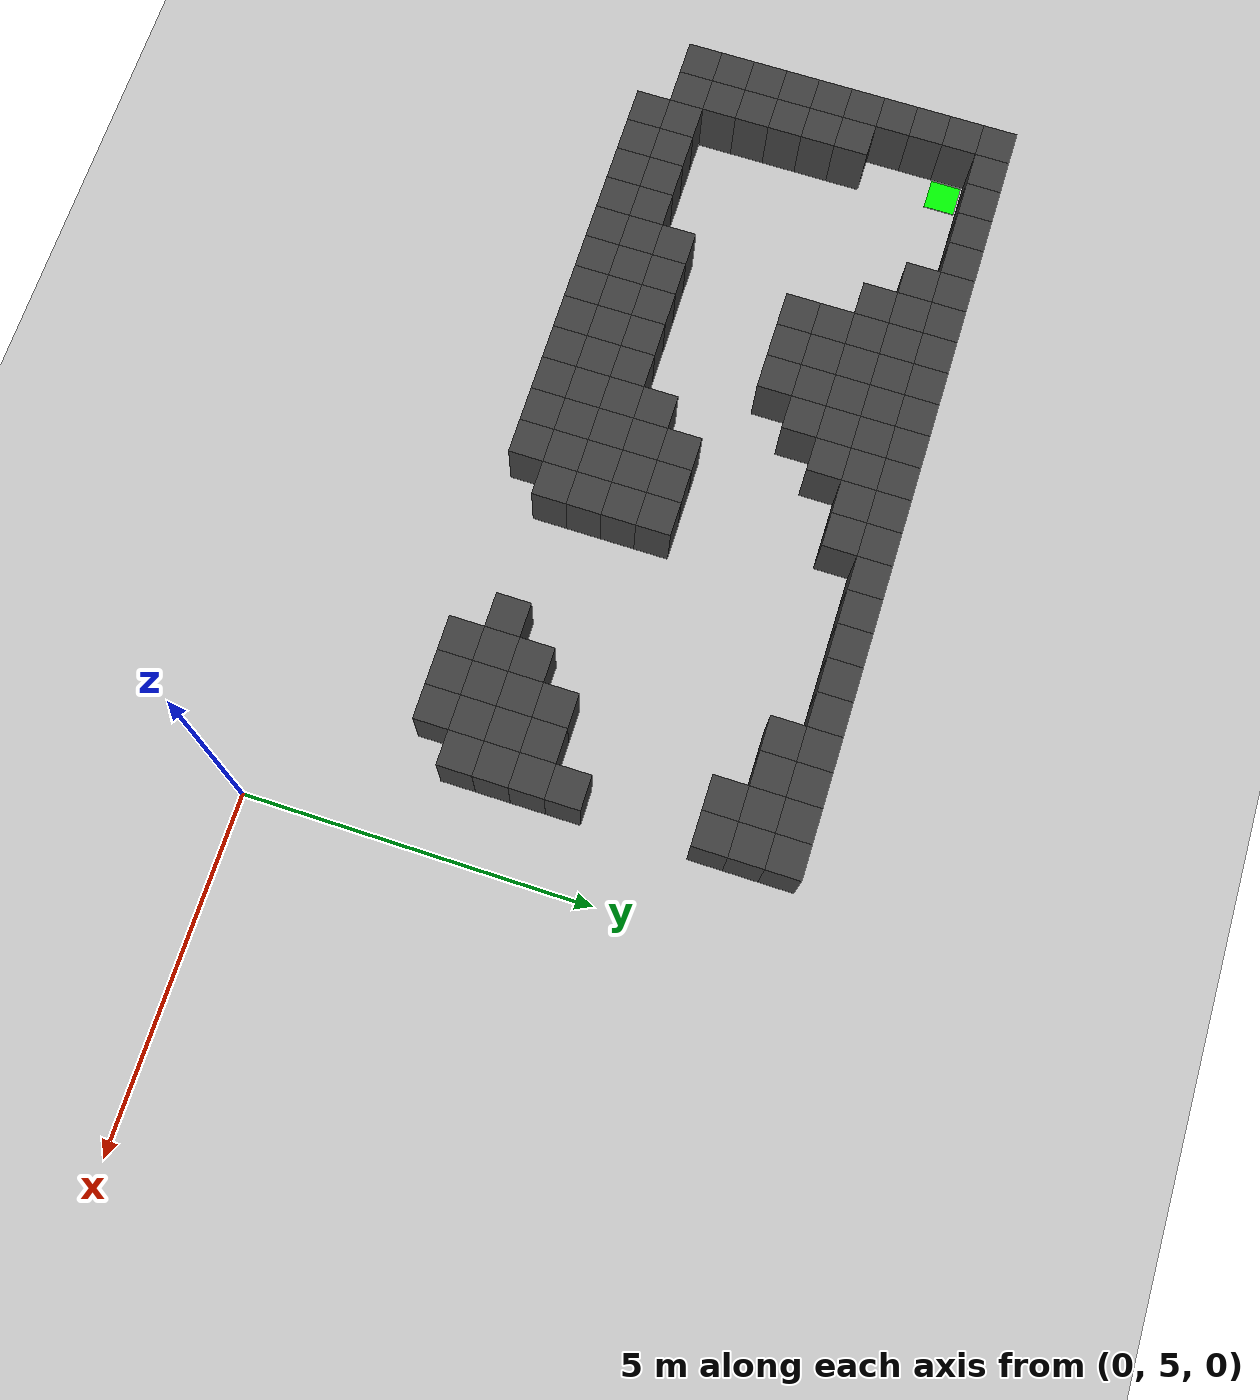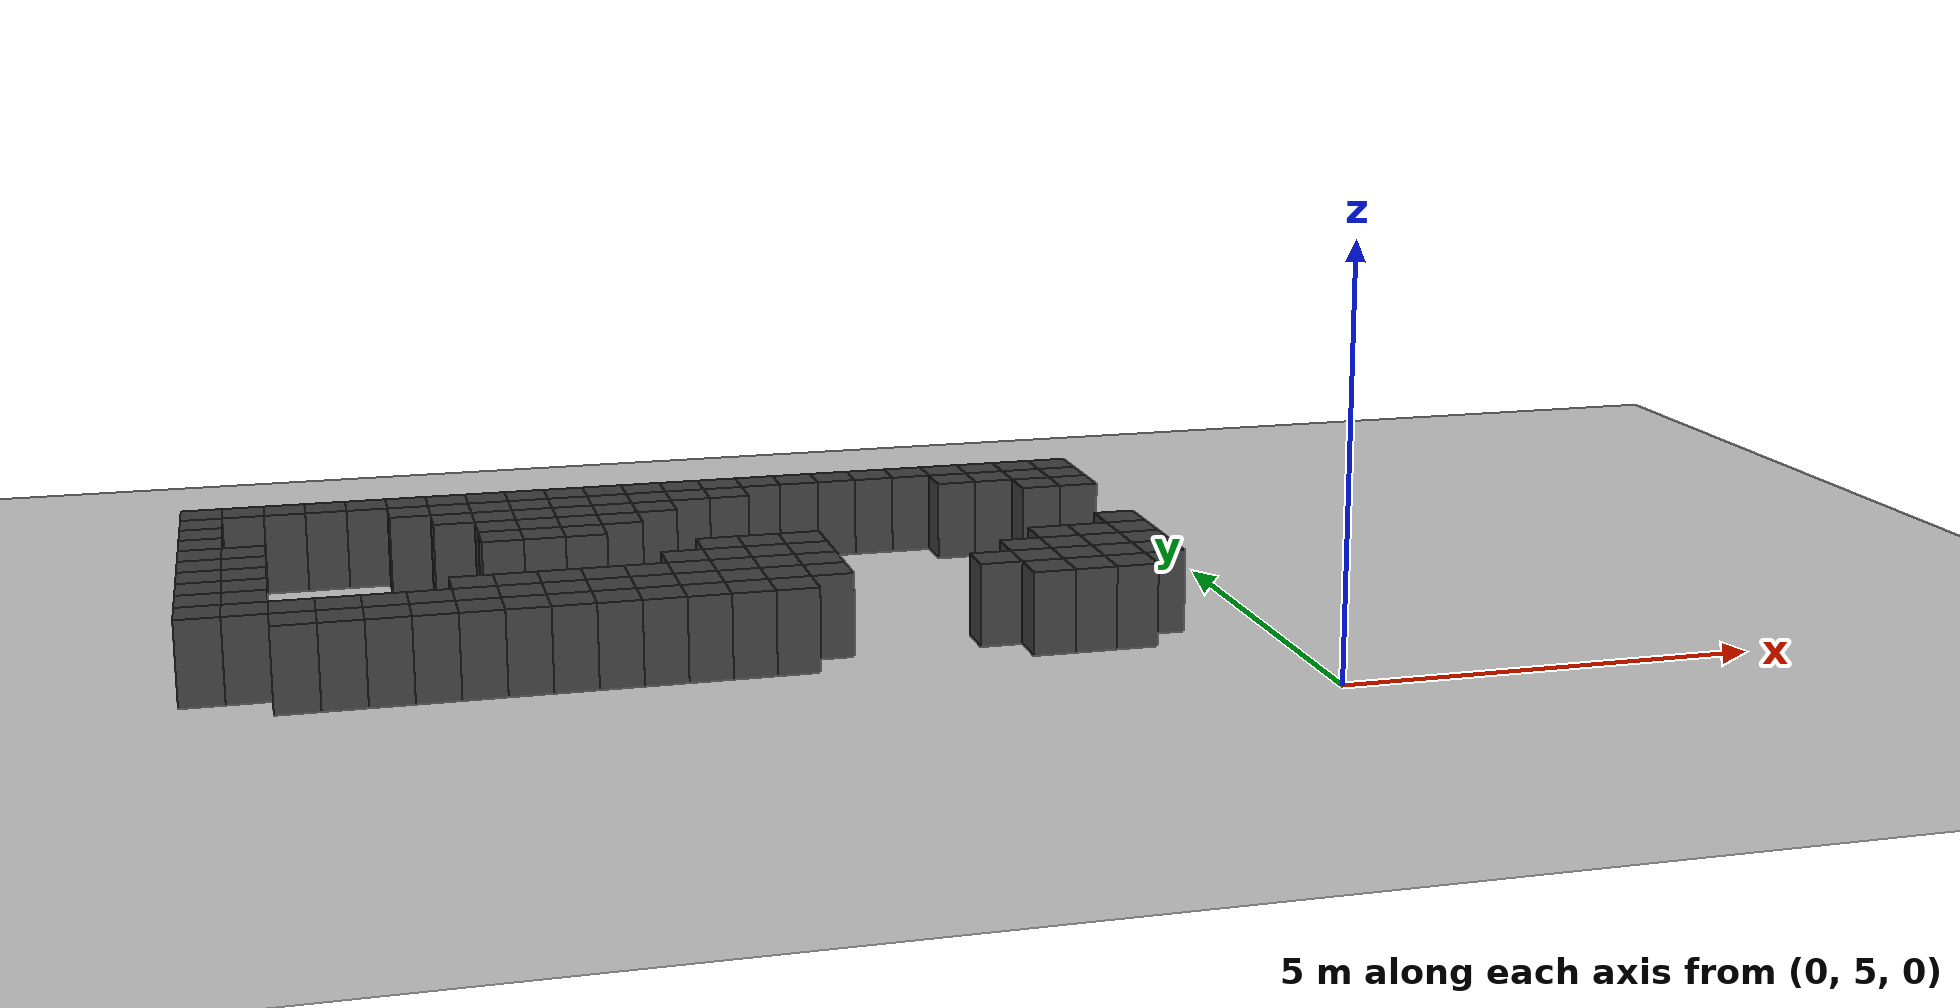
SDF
<sdf version="1.7">
 <world name="map_7972">
  <model name="ground_plane">
   <static>true</static>
   <link name="link">
    <collision name="collision">
     <geometry><plane><normal>0 0 1</normal><size>200 200</size></plane></geometry>
    </collision>
    <visual name="visual">
     <geometry><plane><normal>0 0 1</normal><size>200 200</size></plane></geometry>
     <material><ambient>0.8 0.8 0.8 1</ambient><diffuse>0.8 0.8 0.8 1</diffuse></material>
    </visual>
   </link>
  </model>
  <model name="maze_environment">
   <static>true</static>
   <link name="wall_0">
    <pose>-12.250 12.250 0.500 0 0 0</pose>
    <collision name="col"><geometry><box><size>0.5 0.5 1.0</size></box></geometry></collision>
    <visual name="vis">
     <geometry><box><size>0.5 0.5 1.0</size></box></geometry>
     <material><ambient>0.15 0.15 0.15 1</ambient><diffuse>0.25 0.25 0.25 1</diffuse></material>
    </visual>
   </link>
   <link name="wall_1">
    <pose>-11.750 12.250 0.500 0 0 0</pose>
    <collision name="col"><geometry><box><size>0.5 0.5 1.0</size></box></geometry></collision>
    <visual name="vis">
     <geometry><box><size>0.5 0.5 1.0</size></box></geometry>
     <material><ambient>0.15 0.15 0.15 1</ambient><diffuse>0.25 0.25 0.25 1</diffuse></material>
    </visual>
   </link>
   <link name="wall_2">
    <pose>-11.250 12.250 0.500 0 0 0</pose>
    <collision name="col"><geometry><box><size>0.5 0.5 1.0</size></box></geometry></collision>
    <visual name="vis">
     <geometry><box><size>0.5 0.5 1.0</size></box></geometry>
     <material><ambient>0.15 0.15 0.15 1</ambient><diffuse>0.25 0.25 0.25 1</diffuse></material>
    </visual>
   </link>
   <link name="wall_3">
    <pose>-10.750 12.250 0.500 0 0 0</pose>
    <collision name="col"><geometry><box><size>0.5 0.5 1.0</size></box></geometry></collision>
    <visual name="vis">
     <geometry><box><size>0.5 0.5 1.0</size></box></geometry>
     <material><ambient>0.15 0.15 0.15 1</ambient><diffuse>0.25 0.25 0.25 1</diffuse></material>
    </visual>
   </link>
   <link name="wall_4">
    <pose>-10.250 12.250 0.500 0 0 0</pose>
    <collision name="col"><geometry><box><size>0.5 0.5 1.0</size></box></geometry></collision>
    <visual name="vis">
     <geometry><box><size>0.5 0.5 1.0</size></box></geometry>
     <material><ambient>0.15 0.15 0.15 1</ambient><diffuse>0.25 0.25 0.25 1</diffuse></material>
    </visual>
   </link>
   <link name="wall_5">
    <pose>-9.750 12.250 0.500 0 0 0</pose>
    <collision name="col"><geometry><box><size>0.5 0.5 1.0</size></box></geometry></collision>
    <visual name="vis">
     <geometry><box><size>0.5 0.5 1.0</size></box></geometry>
     <material><ambient>0.15 0.15 0.15 1</ambient><diffuse>0.25 0.25 0.25 1</diffuse></material>
    </visual>
   </link>
   <link name="wall_6">
    <pose>-9.250 12.250 0.500 0 0 0</pose>
    <collision name="col"><geometry><box><size>0.5 0.5 1.0</size></box></geometry></collision>
    <visual name="vis">
     <geometry><box><size>0.5 0.5 1.0</size></box></geometry>
     <material><ambient>0.15 0.15 0.15 1</ambient><diffuse>0.25 0.25 0.25 1</diffuse></material>
    </visual>
   </link>
   <link name="wall_7">
    <pose>-8.750 12.250 0.500 0 0 0</pose>
    <collision name="col"><geometry><box><size>0.5 0.5 1.0</size></box></geometry></collision>
    <visual name="vis">
     <geometry><box><size>0.5 0.5 1.0</size></box></geometry>
     <material><ambient>0.15 0.15 0.15 1</ambient><diffuse>0.25 0.25 0.25 1</diffuse></material>
    </visual>
   </link>
   <link name="wall_8">
    <pose>-8.250 12.250 0.500 0 0 0</pose>
    <collision name="col"><geometry><box><size>0.5 0.5 1.0</size></box></geometry></collision>
    <visual name="vis">
     <geometry><box><size>0.5 0.5 1.0</size></box></geometry>
     <material><ambient>0.15 0.15 0.15 1</ambient><diffuse>0.25 0.25 0.25 1</diffuse></material>
    </visual>
   </link>
   <link name="wall_9">
    <pose>-7.750 12.250 0.500 0 0 0</pose>
    <collision name="col"><geometry><box><size>0.5 0.5 1.0</size></box></geometry></collision>
    <visual name="vis">
     <geometry><box><size>0.5 0.5 1.0</size></box></geometry>
     <material><ambient>0.15 0.15 0.15 1</ambient><diffuse>0.25 0.25 0.25 1</diffuse></material>
    </visual>
   </link>
   <link name="wall_10">
    <pose>-7.250 12.250 0.500 0 0 0</pose>
    <collision name="col"><geometry><box><size>0.5 0.5 1.0</size></box></geometry></collision>
    <visual name="vis">
     <geometry><box><size>0.5 0.5 1.0</size></box></geometry>
     <material><ambient>0.15 0.15 0.15 1</ambient><diffuse>0.25 0.25 0.25 1</diffuse></material>
    </visual>
   </link>
   <link name="wall_11">
    <pose>-6.750 12.250 0.500 0 0 0</pose>
    <collision name="col"><geometry><box><size>0.5 0.5 1.0</size></box></geometry></collision>
    <visual name="vis">
     <geometry><box><size>0.5 0.5 1.0</size></box></geometry>
     <material><ambient>0.15 0.15 0.15 1</ambient><diffuse>0.25 0.25 0.25 1</diffuse></material>
    </visual>
   </link>
   <link name="wall_12">
    <pose>-6.250 12.250 0.500 0 0 0</pose>
    <collision name="col"><geometry><box><size>0.5 0.5 1.0</size></box></geometry></collision>
    <visual name="vis">
     <geometry><box><size>0.5 0.5 1.0</size></box></geometry>
     <material><ambient>0.15 0.15 0.15 1</ambient><diffuse>0.25 0.25 0.25 1</diffuse></material>
    </visual>
   </link>
   <link name="wall_13">
    <pose>-5.750 12.250 0.500 0 0 0</pose>
    <collision name="col"><geometry><box><size>0.5 0.5 1.0</size></box></geometry></collision>
    <visual name="vis">
     <geometry><box><size>0.5 0.5 1.0</size></box></geometry>
     <material><ambient>0.15 0.15 0.15 1</ambient><diffuse>0.25 0.25 0.25 1</diffuse></material>
    </visual>
   </link>
   <link name="wall_14">
    <pose>-5.250 12.250 0.500 0 0 0</pose>
    <collision name="col"><geometry><box><size>0.5 0.5 1.0</size></box></geometry></collision>
    <visual name="vis">
     <geometry><box><size>0.5 0.5 1.0</size></box></geometry>
     <material><ambient>0.15 0.15 0.15 1</ambient><diffuse>0.25 0.25 0.25 1</diffuse></material>
    </visual>
   </link>
   <link name="wall_15">
    <pose>-4.750 12.250 0.500 0 0 0</pose>
    <collision name="col"><geometry><box><size>0.5 0.5 1.0</size></box></geometry></collision>
    <visual name="vis">
     <geometry><box><size>0.5 0.5 1.0</size></box></geometry>
     <material><ambient>0.15 0.15 0.15 1</ambient><diffuse>0.25 0.25 0.25 1</diffuse></material>
    </visual>
   </link>
   <link name="wall_16">
    <pose>-4.250 12.250 0.500 0 0 0</pose>
    <collision name="col"><geometry><box><size>0.5 0.5 1.0</size></box></geometry></collision>
    <visual name="vis">
     <geometry><box><size>0.5 0.5 1.0</size></box></geometry>
     <material><ambient>0.15 0.15 0.15 1</ambient><diffuse>0.25 0.25 0.25 1</diffuse></material>
    </visual>
   </link>
   <link name="wall_17">
    <pose>-3.750 12.250 0.500 0 0 0</pose>
    <collision name="col"><geometry><box><size>0.5 0.5 1.0</size></box></geometry></collision>
    <visual name="vis">
     <geometry><box><size>0.5 0.5 1.0</size></box></geometry>
     <material><ambient>0.15 0.15 0.15 1</ambient><diffuse>0.25 0.25 0.25 1</diffuse></material>
    </visual>
   </link>
   <link name="wall_18">
    <pose>-3.250 12.250 0.500 0 0 0</pose>
    <collision name="col"><geometry><box><size>0.5 0.5 1.0</size></box></geometry></collision>
    <visual name="vis">
     <geometry><box><size>0.5 0.5 1.0</size></box></geometry>
     <material><ambient>0.15 0.15 0.15 1</ambient><diffuse>0.25 0.25 0.25 1</diffuse></material>
    </visual>
   </link>
   <link name="wall_19">
    <pose>-2.750 12.250 0.500 0 0 0</pose>
    <collision name="col"><geometry><box><size>0.5 0.5 1.0</size></box></geometry></collision>
    <visual name="vis">
     <geometry><box><size>0.5 0.5 1.0</size></box></geometry>
     <material><ambient>0.15 0.15 0.15 1</ambient><diffuse>0.25 0.25 0.25 1</diffuse></material>
    </visual>
   </link>
   <link name="wall_20">
    <pose>-2.250 12.250 0.500 0 0 0</pose>
    <collision name="col"><geometry><box><size>0.5 0.5 1.0</size></box></geometry></collision>
    <visual name="vis">
     <geometry><box><size>0.5 0.5 1.0</size></box></geometry>
     <material><ambient>0.15 0.15 0.15 1</ambient><diffuse>0.25 0.25 0.25 1</diffuse></material>
    </visual>
   </link>
   <link name="wall_21">
    <pose>-1.750 12.250 0.500 0 0 0</pose>
    <collision name="col"><geometry><box><size>0.5 0.5 1.0</size></box></geometry></collision>
    <visual name="vis">
     <geometry><box><size>0.5 0.5 1.0</size></box></geometry>
     <material><ambient>0.15 0.15 0.15 1</ambient><diffuse>0.25 0.25 0.25 1</diffuse></material>
    </visual>
   </link>
   <link name="wall_22">
    <pose>-1.250 12.250 0.500 0 0 0</pose>
    <collision name="col"><geometry><box><size>0.5 0.5 1.0</size></box></geometry></collision>
    <visual name="vis">
     <geometry><box><size>0.5 0.5 1.0</size></box></geometry>
     <material><ambient>0.15 0.15 0.15 1</ambient><diffuse>0.25 0.25 0.25 1</diffuse></material>
    </visual>
   </link>
   <link name="wall_50">
    <pose>-12.250 11.750 0.500 0 0 0</pose>
    <collision name="col"><geometry><box><size>0.5 0.5 1.0</size></box></geometry></collision>
    <visual name="vis">
     <geometry><box><size>0.5 0.5 1.0</size></box></geometry>
     <material><ambient>0.15 0.15 0.15 1</ambient><diffuse>0.25 0.25 0.25 1</diffuse></material>
    </visual>
   </link>
   <link name="wall_51">
    <pose>-9.750 11.750 0.500 0 0 0</pose>
    <collision name="col"><geometry><box><size>0.5 0.5 1.0</size></box></geometry></collision>
    <visual name="vis">
     <geometry><box><size>0.5 0.5 1.0</size></box></geometry>
     <material><ambient>0.15 0.15 0.15 1</ambient><diffuse>0.25 0.25 0.25 1</diffuse></material>
    </visual>
   </link>
   <link name="wall_52">
    <pose>-9.250 11.750 0.500 0 0 0</pose>
    <collision name="col"><geometry><box><size>0.5 0.5 1.0</size></box></geometry></collision>
    <visual name="vis">
     <geometry><box><size>0.5 0.5 1.0</size></box></geometry>
     <material><ambient>0.15 0.15 0.15 1</ambient><diffuse>0.25 0.25 0.25 1</diffuse></material>
    </visual>
   </link>
   <link name="wall_53">
    <pose>-8.750 11.750 0.500 0 0 0</pose>
    <collision name="col"><geometry><box><size>0.5 0.5 1.0</size></box></geometry></collision>
    <visual name="vis">
     <geometry><box><size>0.5 0.5 1.0</size></box></geometry>
     <material><ambient>0.15 0.15 0.15 1</ambient><diffuse>0.25 0.25 0.25 1</diffuse></material>
    </visual>
   </link>
   <link name="wall_54">
    <pose>-8.250 11.750 0.500 0 0 0</pose>
    <collision name="col"><geometry><box><size>0.5 0.5 1.0</size></box></geometry></collision>
    <visual name="vis">
     <geometry><box><size>0.5 0.5 1.0</size></box></geometry>
     <material><ambient>0.15 0.15 0.15 1</ambient><diffuse>0.25 0.25 0.25 1</diffuse></material>
    </visual>
   </link>
   <link name="wall_55">
    <pose>-7.750 11.750 0.500 0 0 0</pose>
    <collision name="col"><geometry><box><size>0.5 0.5 1.0</size></box></geometry></collision>
    <visual name="vis">
     <geometry><box><size>0.5 0.5 1.0</size></box></geometry>
     <material><ambient>0.15 0.15 0.15 1</ambient><diffuse>0.25 0.25 0.25 1</diffuse></material>
    </visual>
   </link>
   <link name="wall_56">
    <pose>-7.250 11.750 0.500 0 0 0</pose>
    <collision name="col"><geometry><box><size>0.5 0.5 1.0</size></box></geometry></collision>
    <visual name="vis">
     <geometry><box><size>0.5 0.5 1.0</size></box></geometry>
     <material><ambient>0.15 0.15 0.15 1</ambient><diffuse>0.25 0.25 0.25 1</diffuse></material>
    </visual>
   </link>
   <link name="wall_57">
    <pose>-6.750 11.750 0.500 0 0 0</pose>
    <collision name="col"><geometry><box><size>0.5 0.5 1.0</size></box></geometry></collision>
    <visual name="vis">
     <geometry><box><size>0.5 0.5 1.0</size></box></geometry>
     <material><ambient>0.15 0.15 0.15 1</ambient><diffuse>0.25 0.25 0.25 1</diffuse></material>
    </visual>
   </link>
   <link name="wall_58">
    <pose>-6.250 11.750 0.500 0 0 0</pose>
    <collision name="col"><geometry><box><size>0.5 0.5 1.0</size></box></geometry></collision>
    <visual name="vis">
     <geometry><box><size>0.5 0.5 1.0</size></box></geometry>
     <material><ambient>0.15 0.15 0.15 1</ambient><diffuse>0.25 0.25 0.25 1</diffuse></material>
    </visual>
   </link>
   <link name="wall_59">
    <pose>-5.750 11.750 0.500 0 0 0</pose>
    <collision name="col"><geometry><box><size>0.5 0.5 1.0</size></box></geometry></collision>
    <visual name="vis">
     <geometry><box><size>0.5 0.5 1.0</size></box></geometry>
     <material><ambient>0.15 0.15 0.15 1</ambient><diffuse>0.25 0.25 0.25 1</diffuse></material>
    </visual>
   </link>
   <link name="wall_60">
    <pose>-2.750 11.750 0.500 0 0 0</pose>
    <collision name="col"><geometry><box><size>0.5 0.5 1.0</size></box></geometry></collision>
    <visual name="vis">
     <geometry><box><size>0.5 0.5 1.0</size></box></geometry>
     <material><ambient>0.15 0.15 0.15 1</ambient><diffuse>0.25 0.25 0.25 1</diffuse></material>
    </visual>
   </link>
   <link name="wall_61">
    <pose>-2.250 11.750 0.500 0 0 0</pose>
    <collision name="col"><geometry><box><size>0.5 0.5 1.0</size></box></geometry></collision>
    <visual name="vis">
     <geometry><box><size>0.5 0.5 1.0</size></box></geometry>
     <material><ambient>0.15 0.15 0.15 1</ambient><diffuse>0.25 0.25 0.25 1</diffuse></material>
    </visual>
   </link>
   <link name="wall_62">
    <pose>-1.750 11.750 0.500 0 0 0</pose>
    <collision name="col"><geometry><box><size>0.5 0.5 1.0</size></box></geometry></collision>
    <visual name="vis">
     <geometry><box><size>0.5 0.5 1.0</size></box></geometry>
     <material><ambient>0.15 0.15 0.15 1</ambient><diffuse>0.25 0.25 0.25 1</diffuse></material>
    </visual>
   </link>
   <link name="wall_63">
    <pose>-1.250 11.750 0.500 0 0 0</pose>
    <collision name="col"><geometry><box><size>0.5 0.5 1.0</size></box></geometry></collision>
    <visual name="vis">
     <geometry><box><size>0.5 0.5 1.0</size></box></geometry>
     <material><ambient>0.15 0.15 0.15 1</ambient><diffuse>0.25 0.25 0.25 1</diffuse></material>
    </visual>
   </link>
   <link name="wall_86">
    <pose>-12.250 11.250 0.500 0 0 0</pose>
    <collision name="col"><geometry><box><size>0.5 0.5 1.0</size></box></geometry></collision>
    <visual name="vis">
     <geometry><box><size>0.5 0.5 1.0</size></box></geometry>
     <material><ambient>0.15 0.15 0.15 1</ambient><diffuse>0.25 0.25 0.25 1</diffuse></material>
    </visual>
   </link>
   <link name="wall_87">
    <pose>-9.250 11.250 0.500 0 0 0</pose>
    <collision name="col"><geometry><box><size>0.5 0.5 1.0</size></box></geometry></collision>
    <visual name="vis">
     <geometry><box><size>0.5 0.5 1.0</size></box></geometry>
     <material><ambient>0.15 0.15 0.15 1</ambient><diffuse>0.25 0.25 0.25 1</diffuse></material>
    </visual>
   </link>
   <link name="wall_88">
    <pose>-8.750 11.250 0.500 0 0 0</pose>
    <collision name="col"><geometry><box><size>0.5 0.5 1.0</size></box></geometry></collision>
    <visual name="vis">
     <geometry><box><size>0.5 0.5 1.0</size></box></geometry>
     <material><ambient>0.15 0.15 0.15 1</ambient><diffuse>0.25 0.25 0.25 1</diffuse></material>
    </visual>
   </link>
   <link name="wall_89">
    <pose>-8.250 11.250 0.500 0 0 0</pose>
    <collision name="col"><geometry><box><size>0.5 0.5 1.0</size></box></geometry></collision>
    <visual name="vis">
     <geometry><box><size>0.5 0.5 1.0</size></box></geometry>
     <material><ambient>0.15 0.15 0.15 1</ambient><diffuse>0.25 0.25 0.25 1</diffuse></material>
    </visual>
   </link>
   <link name="wall_90">
    <pose>-7.750 11.250 0.500 0 0 0</pose>
    <collision name="col"><geometry><box><size>0.5 0.5 1.0</size></box></geometry></collision>
    <visual name="vis">
     <geometry><box><size>0.5 0.5 1.0</size></box></geometry>
     <material><ambient>0.15 0.15 0.15 1</ambient><diffuse>0.25 0.25 0.25 1</diffuse></material>
    </visual>
   </link>
   <link name="wall_91">
    <pose>-7.250 11.250 0.500 0 0 0</pose>
    <collision name="col"><geometry><box><size>0.5 0.5 1.0</size></box></geometry></collision>
    <visual name="vis">
     <geometry><box><size>0.5 0.5 1.0</size></box></geometry>
     <material><ambient>0.15 0.15 0.15 1</ambient><diffuse>0.25 0.25 0.25 1</diffuse></material>
    </visual>
   </link>
   <link name="wall_92">
    <pose>-6.750 11.250 0.500 0 0 0</pose>
    <collision name="col"><geometry><box><size>0.5 0.5 1.0</size></box></geometry></collision>
    <visual name="vis">
     <geometry><box><size>0.5 0.5 1.0</size></box></geometry>
     <material><ambient>0.15 0.15 0.15 1</ambient><diffuse>0.25 0.25 0.25 1</diffuse></material>
    </visual>
   </link>
   <link name="wall_93">
    <pose>-1.750 11.250 0.500 0 0 0</pose>
    <collision name="col"><geometry><box><size>0.5 0.5 1.0</size></box></geometry></collision>
    <visual name="vis">
     <geometry><box><size>0.5 0.5 1.0</size></box></geometry>
     <material><ambient>0.15 0.15 0.15 1</ambient><diffuse>0.25 0.25 0.25 1</diffuse></material>
    </visual>
   </link>
   <link name="wall_94">
    <pose>-1.250 11.250 0.500 0 0 0</pose>
    <collision name="col"><geometry><box><size>0.5 0.5 1.0</size></box></geometry></collision>
    <visual name="vis">
     <geometry><box><size>0.5 0.5 1.0</size></box></geometry>
     <material><ambient>0.15 0.15 0.15 1</ambient><diffuse>0.25 0.25 0.25 1</diffuse></material>
    </visual>
   </link>
   <link name="wall_113">
    <pose>-12.250 10.750 0.500 0 0 0</pose>
    <collision name="col"><geometry><box><size>0.5 0.5 1.0</size></box></geometry></collision>
    <visual name="vis">
     <geometry><box><size>0.5 0.5 1.0</size></box></geometry>
     <material><ambient>0.15 0.15 0.15 1</ambient><diffuse>0.25 0.25 0.25 1</diffuse></material>
    </visual>
   </link>
   <link name="wall_114">
    <pose>-8.750 10.750 0.500 0 0 0</pose>
    <collision name="col"><geometry><box><size>0.5 0.5 1.0</size></box></geometry></collision>
    <visual name="vis">
     <geometry><box><size>0.5 0.5 1.0</size></box></geometry>
     <material><ambient>0.15 0.15 0.15 1</ambient><diffuse>0.25 0.25 0.25 1</diffuse></material>
    </visual>
   </link>
   <link name="wall_115">
    <pose>-8.250 10.750 0.500 0 0 0</pose>
    <collision name="col"><geometry><box><size>0.5 0.5 1.0</size></box></geometry></collision>
    <visual name="vis">
     <geometry><box><size>0.5 0.5 1.0</size></box></geometry>
     <material><ambient>0.15 0.15 0.15 1</ambient><diffuse>0.25 0.25 0.25 1</diffuse></material>
    </visual>
   </link>
   <link name="wall_116">
    <pose>-7.750 10.750 0.500 0 0 0</pose>
    <collision name="col"><geometry><box><size>0.5 0.5 1.0</size></box></geometry></collision>
    <visual name="vis">
     <geometry><box><size>0.5 0.5 1.0</size></box></geometry>
     <material><ambient>0.15 0.15 0.15 1</ambient><diffuse>0.25 0.25 0.25 1</diffuse></material>
    </visual>
   </link>
   <link name="wall_117">
    <pose>-7.250 10.750 0.500 0 0 0</pose>
    <collision name="col"><geometry><box><size>0.5 0.5 1.0</size></box></geometry></collision>
    <visual name="vis">
     <geometry><box><size>0.5 0.5 1.0</size></box></geometry>
     <material><ambient>0.15 0.15 0.15 1</ambient><diffuse>0.25 0.25 0.25 1</diffuse></material>
    </visual>
   </link>
   <link name="wall_130">
    <pose>-12.250 10.250 0.500 0 0 0</pose>
    <collision name="col"><geometry><box><size>0.5 0.5 1.0</size></box></geometry></collision>
    <visual name="vis">
     <geometry><box><size>0.5 0.5 1.0</size></box></geometry>
     <material><ambient>0.15 0.15 0.15 1</ambient><diffuse>0.25 0.25 0.25 1</diffuse></material>
    </visual>
   </link>
   <link name="wall_131">
    <pose>-11.750 10.250 0.500 0 0 0</pose>
    <collision name="col"><geometry><box><size>0.5 0.5 1.0</size></box></geometry></collision>
    <visual name="vis">
     <geometry><box><size>0.5 0.5 1.0</size></box></geometry>
     <material><ambient>0.15 0.15 0.15 1</ambient><diffuse>0.25 0.25 0.25 1</diffuse></material>
    </visual>
   </link>
   <link name="wall_132">
    <pose>-8.750 10.250 0.500 0 0 0</pose>
    <collision name="col"><geometry><box><size>0.5 0.5 1.0</size></box></geometry></collision>
    <visual name="vis">
     <geometry><box><size>0.5 0.5 1.0</size></box></geometry>
     <material><ambient>0.15 0.15 0.15 1</ambient><diffuse>0.25 0.25 0.25 1</diffuse></material>
    </visual>
   </link>
   <link name="wall_133">
    <pose>-8.250 10.250 0.500 0 0 0</pose>
    <collision name="col"><geometry><box><size>0.5 0.5 1.0</size></box></geometry></collision>
    <visual name="vis">
     <geometry><box><size>0.5 0.5 1.0</size></box></geometry>
     <material><ambient>0.15 0.15 0.15 1</ambient><diffuse>0.25 0.25 0.25 1</diffuse></material>
    </visual>
   </link>
   <link name="wall_134">
    <pose>-7.750 10.250 0.500 0 0 0</pose>
    <collision name="col"><geometry><box><size>0.5 0.5 1.0</size></box></geometry></collision>
    <visual name="vis">
     <geometry><box><size>0.5 0.5 1.0</size></box></geometry>
     <material><ambient>0.15 0.15 0.15 1</ambient><diffuse>0.25 0.25 0.25 1</diffuse></material>
    </visual>
   </link>
   <link name="wall_143">
    <pose>-12.250 9.750 0.500 0 0 0</pose>
    <collision name="col"><geometry><box><size>0.5 0.5 1.0</size></box></geometry></collision>
    <visual name="vis">
     <geometry><box><size>0.5 0.5 1.0</size></box></geometry>
     <material><ambient>0.15 0.15 0.15 1</ambient><diffuse>0.25 0.25 0.25 1</diffuse></material>
    </visual>
   </link>
   <link name="wall_144">
    <pose>-11.750 9.750 0.500 0 0 0</pose>
    <collision name="col"><geometry><box><size>0.5 0.5 1.0</size></box></geometry></collision>
    <visual name="vis">
     <geometry><box><size>0.5 0.5 1.0</size></box></geometry>
     <material><ambient>0.15 0.15 0.15 1</ambient><diffuse>0.25 0.25 0.25 1</diffuse></material>
    </visual>
   </link>
   <link name="wall_152">
    <pose>-12.250 9.250 0.500 0 0 0</pose>
    <collision name="col"><geometry><box><size>0.5 0.5 1.0</size></box></geometry></collision>
    <visual name="vis">
     <geometry><box><size>0.5 0.5 1.0</size></box></geometry>
     <material><ambient>0.15 0.15 0.15 1</ambient><diffuse>0.25 0.25 0.25 1</diffuse></material>
    </visual>
   </link>
   <link name="wall_153">
    <pose>-11.750 9.250 0.500 0 0 0</pose>
    <collision name="col"><geometry><box><size>0.5 0.5 1.0</size></box></geometry></collision>
    <visual name="vis">
     <geometry><box><size>0.5 0.5 1.0</size></box></geometry>
     <material><ambient>0.15 0.15 0.15 1</ambient><diffuse>0.25 0.25 0.25 1</diffuse></material>
    </visual>
   </link>
   <link name="wall_154">
    <pose>-6.250 9.250 0.500 0 0 0</pose>
    <collision name="col"><geometry><box><size>0.5 0.5 1.0</size></box></geometry></collision>
    <visual name="vis">
     <geometry><box><size>0.5 0.5 1.0</size></box></geometry>
     <material><ambient>0.15 0.15 0.15 1</ambient><diffuse>0.25 0.25 0.25 1</diffuse></material>
    </visual>
   </link>
   <link name="wall_155">
    <pose>-5.750 9.250 0.500 0 0 0</pose>
    <collision name="col"><geometry><box><size>0.5 0.5 1.0</size></box></geometry></collision>
    <visual name="vis">
     <geometry><box><size>0.5 0.5 1.0</size></box></geometry>
     <material><ambient>0.15 0.15 0.15 1</ambient><diffuse>0.25 0.25 0.25 1</diffuse></material>
    </visual>
   </link>
   <link name="wall_156">
    <pose>-5.250 9.250 0.500 0 0 0</pose>
    <collision name="col"><geometry><box><size>0.5 0.5 1.0</size></box></geometry></collision>
    <visual name="vis">
     <geometry><box><size>0.5 0.5 1.0</size></box></geometry>
     <material><ambient>0.15 0.15 0.15 1</ambient><diffuse>0.25 0.25 0.25 1</diffuse></material>
    </visual>
   </link>
   <link name="wall_157">
    <pose>-1.250 9.250 0.500 0 0 0</pose>
    <collision name="col"><geometry><box><size>0.5 0.5 1.0</size></box></geometry></collision>
    <visual name="vis">
     <geometry><box><size>0.5 0.5 1.0</size></box></geometry>
     <material><ambient>0.15 0.15 0.15 1</ambient><diffuse>0.25 0.25 0.25 1</diffuse></material>
    </visual>
   </link>
   <link name="wall_161">
    <pose>-12.250 8.750 0.500 0 0 0</pose>
    <collision name="col"><geometry><box><size>0.5 0.5 1.0</size></box></geometry></collision>
    <visual name="vis">
     <geometry><box><size>0.5 0.5 1.0</size></box></geometry>
     <material><ambient>0.15 0.15 0.15 1</ambient><diffuse>0.25 0.25 0.25 1</diffuse></material>
    </visual>
   </link>
   <link name="wall_162">
    <pose>-11.750 8.750 0.500 0 0 0</pose>
    <collision name="col"><geometry><box><size>0.5 0.5 1.0</size></box></geometry></collision>
    <visual name="vis">
     <geometry><box><size>0.5 0.5 1.0</size></box></geometry>
     <material><ambient>0.15 0.15 0.15 1</ambient><diffuse>0.25 0.25 0.25 1</diffuse></material>
    </visual>
   </link>
   <link name="wall_163">
    <pose>-6.750 8.750 0.500 0 0 0</pose>
    <collision name="col"><geometry><box><size>0.5 0.5 1.0</size></box></geometry></collision>
    <visual name="vis">
     <geometry><box><size>0.5 0.5 1.0</size></box></geometry>
     <material><ambient>0.15 0.15 0.15 1</ambient><diffuse>0.25 0.25 0.25 1</diffuse></material>
    </visual>
   </link>
   <link name="wall_164">
    <pose>-6.250 8.750 0.500 0 0 0</pose>
    <collision name="col"><geometry><box><size>0.5 0.5 1.0</size></box></geometry></collision>
    <visual name="vis">
     <geometry><box><size>0.5 0.5 1.0</size></box></geometry>
     <material><ambient>0.15 0.15 0.15 1</ambient><diffuse>0.25 0.25 0.25 1</diffuse></material>
    </visual>
   </link>
   <link name="wall_165">
    <pose>-5.750 8.750 0.500 0 0 0</pose>
    <collision name="col"><geometry><box><size>0.5 0.5 1.0</size></box></geometry></collision>
    <visual name="vis">
     <geometry><box><size>0.5 0.5 1.0</size></box></geometry>
     <material><ambient>0.15 0.15 0.15 1</ambient><diffuse>0.25 0.25 0.25 1</diffuse></material>
    </visual>
   </link>
   <link name="wall_166">
    <pose>-5.250 8.750 0.500 0 0 0</pose>
    <collision name="col"><geometry><box><size>0.5 0.5 1.0</size></box></geometry></collision>
    <visual name="vis">
     <geometry><box><size>0.5 0.5 1.0</size></box></geometry>
     <material><ambient>0.15 0.15 0.15 1</ambient><diffuse>0.25 0.25 0.25 1</diffuse></material>
    </visual>
   </link>
   <link name="wall_167">
    <pose>-2.250 8.750 0.500 0 0 0</pose>
    <collision name="col"><geometry><box><size>0.5 0.5 1.0</size></box></geometry></collision>
    <visual name="vis">
     <geometry><box><size>0.5 0.5 1.0</size></box></geometry>
     <material><ambient>0.15 0.15 0.15 1</ambient><diffuse>0.25 0.25 0.25 1</diffuse></material>
    </visual>
   </link>
   <link name="wall_168">
    <pose>-1.750 8.750 0.500 0 0 0</pose>
    <collision name="col"><geometry><box><size>0.5 0.5 1.0</size></box></geometry></collision>
    <visual name="vis">
     <geometry><box><size>0.5 0.5 1.0</size></box></geometry>
     <material><ambient>0.15 0.15 0.15 1</ambient><diffuse>0.25 0.25 0.25 1</diffuse></material>
    </visual>
   </link>
   <link name="wall_169">
    <pose>-1.250 8.750 0.500 0 0 0</pose>
    <collision name="col"><geometry><box><size>0.5 0.5 1.0</size></box></geometry></collision>
    <visual name="vis">
     <geometry><box><size>0.5 0.5 1.0</size></box></geometry>
     <material><ambient>0.15 0.15 0.15 1</ambient><diffuse>0.25 0.25 0.25 1</diffuse></material>
    </visual>
   </link>
   <link name="wall_175">
    <pose>-12.250 8.250 0.500 0 0 0</pose>
    <collision name="col"><geometry><box><size>0.5 0.5 1.0</size></box></geometry></collision>
    <visual name="vis">
     <geometry><box><size>0.5 0.5 1.0</size></box></geometry>
     <material><ambient>0.15 0.15 0.15 1</ambient><diffuse>0.25 0.25 0.25 1</diffuse></material>
    </visual>
   </link>
   <link name="wall_176">
    <pose>-11.750 8.250 0.500 0 0 0</pose>
    <collision name="col"><geometry><box><size>0.5 0.5 1.0</size></box></geometry></collision>
    <visual name="vis">
     <geometry><box><size>0.5 0.5 1.0</size></box></geometry>
     <material><ambient>0.15 0.15 0.15 1</ambient><diffuse>0.25 0.25 0.25 1</diffuse></material>
    </visual>
   </link>
   <link name="wall_177">
    <pose>-9.250 8.250 0.500 0 0 0</pose>
    <collision name="col"><geometry><box><size>0.5 0.5 1.0</size></box></geometry></collision>
    <visual name="vis">
     <geometry><box><size>0.5 0.5 1.0</size></box></geometry>
     <material><ambient>0.15 0.15 0.15 1</ambient><diffuse>0.25 0.25 0.25 1</diffuse></material>
    </visual>
   </link>
   <link name="wall_178">
    <pose>-8.750 8.250 0.500 0 0 0</pose>
    <collision name="col"><geometry><box><size>0.5 0.5 1.0</size></box></geometry></collision>
    <visual name="vis">
     <geometry><box><size>0.5 0.5 1.0</size></box></geometry>
     <material><ambient>0.15 0.15 0.15 1</ambient><diffuse>0.25 0.25 0.25 1</diffuse></material>
    </visual>
   </link>
   <link name="wall_179">
    <pose>-8.250 8.250 0.500 0 0 0</pose>
    <collision name="col"><geometry><box><size>0.5 0.5 1.0</size></box></geometry></collision>
    <visual name="vis">
     <geometry><box><size>0.5 0.5 1.0</size></box></geometry>
     <material><ambient>0.15 0.15 0.15 1</ambient><diffuse>0.25 0.25 0.25 1</diffuse></material>
    </visual>
   </link>
   <link name="wall_180">
    <pose>-7.750 8.250 0.500 0 0 0</pose>
    <collision name="col"><geometry><box><size>0.5 0.5 1.0</size></box></geometry></collision>
    <visual name="vis">
     <geometry><box><size>0.5 0.5 1.0</size></box></geometry>
     <material><ambient>0.15 0.15 0.15 1</ambient><diffuse>0.25 0.25 0.25 1</diffuse></material>
    </visual>
   </link>
   <link name="wall_181">
    <pose>-7.250 8.250 0.500 0 0 0</pose>
    <collision name="col"><geometry><box><size>0.5 0.5 1.0</size></box></geometry></collision>
    <visual name="vis">
     <geometry><box><size>0.5 0.5 1.0</size></box></geometry>
     <material><ambient>0.15 0.15 0.15 1</ambient><diffuse>0.25 0.25 0.25 1</diffuse></material>
    </visual>
   </link>
   <link name="wall_182">
    <pose>-6.750 8.250 0.500 0 0 0</pose>
    <collision name="col"><geometry><box><size>0.5 0.5 1.0</size></box></geometry></collision>
    <visual name="vis">
     <geometry><box><size>0.5 0.5 1.0</size></box></geometry>
     <material><ambient>0.15 0.15 0.15 1</ambient><diffuse>0.25 0.25 0.25 1</diffuse></material>
    </visual>
   </link>
   <link name="wall_183">
    <pose>-6.250 8.250 0.500 0 0 0</pose>
    <collision name="col"><geometry><box><size>0.5 0.5 1.0</size></box></geometry></collision>
    <visual name="vis">
     <geometry><box><size>0.5 0.5 1.0</size></box></geometry>
     <material><ambient>0.15 0.15 0.15 1</ambient><diffuse>0.25 0.25 0.25 1</diffuse></material>
    </visual>
   </link>
   <link name="wall_184">
    <pose>-5.750 8.250 0.500 0 0 0</pose>
    <collision name="col"><geometry><box><size>0.5 0.5 1.0</size></box></geometry></collision>
    <visual name="vis">
     <geometry><box><size>0.5 0.5 1.0</size></box></geometry>
     <material><ambient>0.15 0.15 0.15 1</ambient><diffuse>0.25 0.25 0.25 1</diffuse></material>
    </visual>
   </link>
   <link name="wall_185">
    <pose>-5.250 8.250 0.500 0 0 0</pose>
    <collision name="col"><geometry><box><size>0.5 0.5 1.0</size></box></geometry></collision>
    <visual name="vis">
     <geometry><box><size>0.5 0.5 1.0</size></box></geometry>
     <material><ambient>0.15 0.15 0.15 1</ambient><diffuse>0.25 0.25 0.25 1</diffuse></material>
    </visual>
   </link>
   <link name="wall_186">
    <pose>-2.750 8.250 0.500 0 0 0</pose>
    <collision name="col"><geometry><box><size>0.5 0.5 1.0</size></box></geometry></collision>
    <visual name="vis">
     <geometry><box><size>0.5 0.5 1.0</size></box></geometry>
     <material><ambient>0.15 0.15 0.15 1</ambient><diffuse>0.25 0.25 0.25 1</diffuse></material>
    </visual>
   </link>
   <link name="wall_187">
    <pose>-2.250 8.250 0.500 0 0 0</pose>
    <collision name="col"><geometry><box><size>0.5 0.5 1.0</size></box></geometry></collision>
    <visual name="vis">
     <geometry><box><size>0.5 0.5 1.0</size></box></geometry>
     <material><ambient>0.15 0.15 0.15 1</ambient><diffuse>0.25 0.25 0.25 1</diffuse></material>
    </visual>
   </link>
   <link name="wall_188">
    <pose>-1.750 8.250 0.500 0 0 0</pose>
    <collision name="col"><geometry><box><size>0.5 0.5 1.0</size></box></geometry></collision>
    <visual name="vis">
     <geometry><box><size>0.5 0.5 1.0</size></box></geometry>
     <material><ambient>0.15 0.15 0.15 1</ambient><diffuse>0.25 0.25 0.25 1</diffuse></material>
    </visual>
   </link>
   <link name="wall_189">
    <pose>-1.250 8.250 0.500 0 0 0</pose>
    <collision name="col"><geometry><box><size>0.5 0.5 1.0</size></box></geometry></collision>
    <visual name="vis">
     <geometry><box><size>0.5 0.5 1.0</size></box></geometry>
     <material><ambient>0.15 0.15 0.15 1</ambient><diffuse>0.25 0.25 0.25 1</diffuse></material>
    </visual>
   </link>
   <link name="wall_196">
    <pose>-12.250 7.750 0.500 0 0 0</pose>
    <collision name="col"><geometry><box><size>0.5 0.5 1.0</size></box></geometry></collision>
    <visual name="vis">
     <geometry><box><size>0.5 0.5 1.0</size></box></geometry>
     <material><ambient>0.15 0.15 0.15 1</ambient><diffuse>0.25 0.25 0.25 1</diffuse></material>
    </visual>
   </link>
   <link name="wall_197">
    <pose>-11.750 7.750 0.500 0 0 0</pose>
    <collision name="col"><geometry><box><size>0.5 0.5 1.0</size></box></geometry></collision>
    <visual name="vis">
     <geometry><box><size>0.5 0.5 1.0</size></box></geometry>
     <material><ambient>0.15 0.15 0.15 1</ambient><diffuse>0.25 0.25 0.25 1</diffuse></material>
    </visual>
   </link>
   <link name="wall_198">
    <pose>-11.250 7.750 0.500 0 0 0</pose>
    <collision name="col"><geometry><box><size>0.5 0.5 1.0</size></box></geometry></collision>
    <visual name="vis">
     <geometry><box><size>0.5 0.5 1.0</size></box></geometry>
     <material><ambient>0.15 0.15 0.15 1</ambient><diffuse>0.25 0.25 0.25 1</diffuse></material>
    </visual>
   </link>
   <link name="wall_199">
    <pose>-10.750 7.750 0.500 0 0 0</pose>
    <collision name="col"><geometry><box><size>0.5 0.5 1.0</size></box></geometry></collision>
    <visual name="vis">
     <geometry><box><size>0.5 0.5 1.0</size></box></geometry>
     <material><ambient>0.15 0.15 0.15 1</ambient><diffuse>0.25 0.25 0.25 1</diffuse></material>
    </visual>
   </link>
   <link name="wall_200">
    <pose>-10.250 7.750 0.500 0 0 0</pose>
    <collision name="col"><geometry><box><size>0.5 0.5 1.0</size></box></geometry></collision>
    <visual name="vis">
     <geometry><box><size>0.5 0.5 1.0</size></box></geometry>
     <material><ambient>0.15 0.15 0.15 1</ambient><diffuse>0.25 0.25 0.25 1</diffuse></material>
    </visual>
   </link>
   <link name="wall_201">
    <pose>-9.750 7.750 0.500 0 0 0</pose>
    <collision name="col"><geometry><box><size>0.5 0.5 1.0</size></box></geometry></collision>
    <visual name="vis">
     <geometry><box><size>0.5 0.5 1.0</size></box></geometry>
     <material><ambient>0.15 0.15 0.15 1</ambient><diffuse>0.25 0.25 0.25 1</diffuse></material>
    </visual>
   </link>
   <link name="wall_202">
    <pose>-9.250 7.750 0.500 0 0 0</pose>
    <collision name="col"><geometry><box><size>0.5 0.5 1.0</size></box></geometry></collision>
    <visual name="vis">
     <geometry><box><size>0.5 0.5 1.0</size></box></geometry>
     <material><ambient>0.15 0.15 0.15 1</ambient><diffuse>0.25 0.25 0.25 1</diffuse></material>
    </visual>
   </link>
   <link name="wall_203">
    <pose>-8.750 7.750 0.500 0 0 0</pose>
    <collision name="col"><geometry><box><size>0.5 0.5 1.0</size></box></geometry></collision>
    <visual name="vis">
     <geometry><box><size>0.5 0.5 1.0</size></box></geometry>
     <material><ambient>0.15 0.15 0.15 1</ambient><diffuse>0.25 0.25 0.25 1</diffuse></material>
    </visual>
   </link>
   <link name="wall_204">
    <pose>-8.250 7.750 0.500 0 0 0</pose>
    <collision name="col"><geometry><box><size>0.5 0.5 1.0</size></box></geometry></collision>
    <visual name="vis">
     <geometry><box><size>0.5 0.5 1.0</size></box></geometry>
     <material><ambient>0.15 0.15 0.15 1</ambient><diffuse>0.25 0.25 0.25 1</diffuse></material>
    </visual>
   </link>
   <link name="wall_205">
    <pose>-7.750 7.750 0.500 0 0 0</pose>
    <collision name="col"><geometry><box><size>0.5 0.5 1.0</size></box></geometry></collision>
    <visual name="vis">
     <geometry><box><size>0.5 0.5 1.0</size></box></geometry>
     <material><ambient>0.15 0.15 0.15 1</ambient><diffuse>0.25 0.25 0.25 1</diffuse></material>
    </visual>
   </link>
   <link name="wall_206">
    <pose>-7.250 7.750 0.500 0 0 0</pose>
    <collision name="col"><geometry><box><size>0.5 0.5 1.0</size></box></geometry></collision>
    <visual name="vis">
     <geometry><box><size>0.5 0.5 1.0</size></box></geometry>
     <material><ambient>0.15 0.15 0.15 1</ambient><diffuse>0.25 0.25 0.25 1</diffuse></material>
    </visual>
   </link>
   <link name="wall_207">
    <pose>-6.750 7.750 0.500 0 0 0</pose>
    <collision name="col"><geometry><box><size>0.5 0.5 1.0</size></box></geometry></collision>
    <visual name="vis">
     <geometry><box><size>0.5 0.5 1.0</size></box></geometry>
     <material><ambient>0.15 0.15 0.15 1</ambient><diffuse>0.25 0.25 0.25 1</diffuse></material>
    </visual>
   </link>
   <link name="wall_208">
    <pose>-6.250 7.750 0.500 0 0 0</pose>
    <collision name="col"><geometry><box><size>0.5 0.5 1.0</size></box></geometry></collision>
    <visual name="vis">
     <geometry><box><size>0.5 0.5 1.0</size></box></geometry>
     <material><ambient>0.15 0.15 0.15 1</ambient><diffuse>0.25 0.25 0.25 1</diffuse></material>
    </visual>
   </link>
   <link name="wall_209">
    <pose>-5.750 7.750 0.500 0 0 0</pose>
    <collision name="col"><geometry><box><size>0.5 0.5 1.0</size></box></geometry></collision>
    <visual name="vis">
     <geometry><box><size>0.5 0.5 1.0</size></box></geometry>
     <material><ambient>0.15 0.15 0.15 1</ambient><diffuse>0.25 0.25 0.25 1</diffuse></material>
    </visual>
   </link>
   <link name="wall_210">
    <pose>-5.250 7.750 0.500 0 0 0</pose>
    <collision name="col"><geometry><box><size>0.5 0.5 1.0</size></box></geometry></collision>
    <visual name="vis">
     <geometry><box><size>0.5 0.5 1.0</size></box></geometry>
     <material><ambient>0.15 0.15 0.15 1</ambient><diffuse>0.25 0.25 0.25 1</diffuse></material>
    </visual>
   </link>
   <link name="wall_211">
    <pose>-3.250 7.750 0.500 0 0 0</pose>
    <collision name="col"><geometry><box><size>0.5 0.5 1.0</size></box></geometry></collision>
    <visual name="vis">
     <geometry><box><size>0.5 0.5 1.0</size></box></geometry>
     <material><ambient>0.15 0.15 0.15 1</ambient><diffuse>0.25 0.25 0.25 1</diffuse></material>
    </visual>
   </link>
   <link name="wall_212">
    <pose>-2.750 7.750 0.500 0 0 0</pose>
    <collision name="col"><geometry><box><size>0.5 0.5 1.0</size></box></geometry></collision>
    <visual name="vis">
     <geometry><box><size>0.5 0.5 1.0</size></box></geometry>
     <material><ambient>0.15 0.15 0.15 1</ambient><diffuse>0.25 0.25 0.25 1</diffuse></material>
    </visual>
   </link>
   <link name="wall_213">
    <pose>-2.250 7.750 0.500 0 0 0</pose>
    <collision name="col"><geometry><box><size>0.5 0.5 1.0</size></box></geometry></collision>
    <visual name="vis">
     <geometry><box><size>0.5 0.5 1.0</size></box></geometry>
     <material><ambient>0.15 0.15 0.15 1</ambient><diffuse>0.25 0.25 0.25 1</diffuse></material>
    </visual>
   </link>
   <link name="wall_214">
    <pose>-1.750 7.750 0.500 0 0 0</pose>
    <collision name="col"><geometry><box><size>0.5 0.5 1.0</size></box></geometry></collision>
    <visual name="vis">
     <geometry><box><size>0.5 0.5 1.0</size></box></geometry>
     <material><ambient>0.15 0.15 0.15 1</ambient><diffuse>0.25 0.25 0.25 1</diffuse></material>
    </visual>
   </link>
   <link name="wall_215">
    <pose>-1.250 7.750 0.500 0 0 0</pose>
    <collision name="col"><geometry><box><size>0.5 0.5 1.0</size></box></geometry></collision>
    <visual name="vis">
     <geometry><box><size>0.5 0.5 1.0</size></box></geometry>
     <material><ambient>0.15 0.15 0.15 1</ambient><diffuse>0.25 0.25 0.25 1</diffuse></material>
    </visual>
   </link>
   <link name="wall_223">
    <pose>-11.250 7.250 0.500 0 0 0</pose>
    <collision name="col"><geometry><box><size>0.5 0.5 1.0</size></box></geometry></collision>
    <visual name="vis">
     <geometry><box><size>0.5 0.5 1.0</size></box></geometry>
     <material><ambient>0.15 0.15 0.15 1</ambient><diffuse>0.25 0.25 0.25 1</diffuse></material>
    </visual>
   </link>
   <link name="wall_224">
    <pose>-10.750 7.250 0.500 0 0 0</pose>
    <collision name="col"><geometry><box><size>0.5 0.5 1.0</size></box></geometry></collision>
    <visual name="vis">
     <geometry><box><size>0.5 0.5 1.0</size></box></geometry>
     <material><ambient>0.15 0.15 0.15 1</ambient><diffuse>0.25 0.25 0.25 1</diffuse></material>
    </visual>
   </link>
   <link name="wall_225">
    <pose>-10.250 7.250 0.500 0 0 0</pose>
    <collision name="col"><geometry><box><size>0.5 0.5 1.0</size></box></geometry></collision>
    <visual name="vis">
     <geometry><box><size>0.5 0.5 1.0</size></box></geometry>
     <material><ambient>0.15 0.15 0.15 1</ambient><diffuse>0.25 0.25 0.25 1</diffuse></material>
    </visual>
   </link>
   <link name="wall_226">
    <pose>-9.750 7.250 0.500 0 0 0</pose>
    <collision name="col"><geometry><box><size>0.5 0.5 1.0</size></box></geometry></collision>
    <visual name="vis">
     <geometry><box><size>0.5 0.5 1.0</size></box></geometry>
     <material><ambient>0.15 0.15 0.15 1</ambient><diffuse>0.25 0.25 0.25 1</diffuse></material>
    </visual>
   </link>
   <link name="wall_227">
    <pose>-9.250 7.250 0.500 0 0 0</pose>
    <collision name="col"><geometry><box><size>0.5 0.5 1.0</size></box></geometry></collision>
    <visual name="vis">
     <geometry><box><size>0.5 0.5 1.0</size></box></geometry>
     <material><ambient>0.15 0.15 0.15 1</ambient><diffuse>0.25 0.25 0.25 1</diffuse></material>
    </visual>
   </link>
   <link name="wall_228">
    <pose>-8.750 7.250 0.500 0 0 0</pose>
    <collision name="col"><geometry><box><size>0.5 0.5 1.0</size></box></geometry></collision>
    <visual name="vis">
     <geometry><box><size>0.5 0.5 1.0</size></box></geometry>
     <material><ambient>0.15 0.15 0.15 1</ambient><diffuse>0.25 0.25 0.25 1</diffuse></material>
    </visual>
   </link>
   <link name="wall_229">
    <pose>-8.250 7.250 0.500 0 0 0</pose>
    <collision name="col"><geometry><box><size>0.5 0.5 1.0</size></box></geometry></collision>
    <visual name="vis">
     <geometry><box><size>0.5 0.5 1.0</size></box></geometry>
     <material><ambient>0.15 0.15 0.15 1</ambient><diffuse>0.25 0.25 0.25 1</diffuse></material>
    </visual>
   </link>
   <link name="wall_230">
    <pose>-7.750 7.250 0.500 0 0 0</pose>
    <collision name="col"><geometry><box><size>0.5 0.5 1.0</size></box></geometry></collision>
    <visual name="vis">
     <geometry><box><size>0.5 0.5 1.0</size></box></geometry>
     <material><ambient>0.15 0.15 0.15 1</ambient><diffuse>0.25 0.25 0.25 1</diffuse></material>
    </visual>
   </link>
   <link name="wall_231">
    <pose>-7.250 7.250 0.500 0 0 0</pose>
    <collision name="col"><geometry><box><size>0.5 0.5 1.0</size></box></geometry></collision>
    <visual name="vis">
     <geometry><box><size>0.5 0.5 1.0</size></box></geometry>
     <material><ambient>0.15 0.15 0.15 1</ambient><diffuse>0.25 0.25 0.25 1</diffuse></material>
    </visual>
   </link>
   <link name="wall_232">
    <pose>-6.750 7.250 0.500 0 0 0</pose>
    <collision name="col"><geometry><box><size>0.5 0.5 1.0</size></box></geometry></collision>
    <visual name="vis">
     <geometry><box><size>0.5 0.5 1.0</size></box></geometry>
     <material><ambient>0.15 0.15 0.15 1</ambient><diffuse>0.25 0.25 0.25 1</diffuse></material>
    </visual>
   </link>
   <link name="wall_233">
    <pose>-6.250 7.250 0.500 0 0 0</pose>
    <collision name="col"><geometry><box><size>0.5 0.5 1.0</size></box></geometry></collision>
    <visual name="vis">
     <geometry><box><size>0.5 0.5 1.0</size></box></geometry>
     <material><ambient>0.15 0.15 0.15 1</ambient><diffuse>0.25 0.25 0.25 1</diffuse></material>
    </visual>
   </link>
   <link name="wall_234">
    <pose>-5.750 7.250 0.500 0 0 0</pose>
    <collision name="col"><geometry><box><size>0.5 0.5 1.0</size></box></geometry></collision>
    <visual name="vis">
     <geometry><box><size>0.5 0.5 1.0</size></box></geometry>
     <material><ambient>0.15 0.15 0.15 1</ambient><diffuse>0.25 0.25 0.25 1</diffuse></material>
    </visual>
   </link>
   <link name="wall_235">
    <pose>-2.750 7.250 0.500 0 0 0</pose>
    <collision name="col"><geometry><box><size>0.5 0.5 1.0</size></box></geometry></collision>
    <visual name="vis">
     <geometry><box><size>0.5 0.5 1.0</size></box></geometry>
     <material><ambient>0.15 0.15 0.15 1</ambient><diffuse>0.25 0.25 0.25 1</diffuse></material>
    </visual>
   </link>
   <link name="wall_236">
    <pose>-2.250 7.250 0.500 0 0 0</pose>
    <collision name="col"><geometry><box><size>0.5 0.5 1.0</size></box></geometry></collision>
    <visual name="vis">
     <geometry><box><size>0.5 0.5 1.0</size></box></geometry>
     <material><ambient>0.15 0.15 0.15 1</ambient><diffuse>0.25 0.25 0.25 1</diffuse></material>
    </visual>
   </link>
   <link name="wall_237">
    <pose>-1.750 7.250 0.500 0 0 0</pose>
    <collision name="col"><geometry><box><size>0.5 0.5 1.0</size></box></geometry></collision>
    <visual name="vis">
     <geometry><box><size>0.5 0.5 1.0</size></box></geometry>
     <material><ambient>0.15 0.15 0.15 1</ambient><diffuse>0.25 0.25 0.25 1</diffuse></material>
    </visual>
   </link>
   <link name="start_zone">
    <pose>-11.750 11.750 0.005 0 0 0</pose>
    <visual name="vis">
     <geometry><box><size>0.45 0.45 0.01</size></box></geometry>
     <material>
      <ambient>0.0 1.0 0.0 1</ambient>
      <diffuse>0.0 1.0 0.0 1</diffuse>
      <emissive>0.00 0.60 0.00 1</emissive>
     </material>
    </visual>
   </link>
  </model>
 </world>
</sdf>
